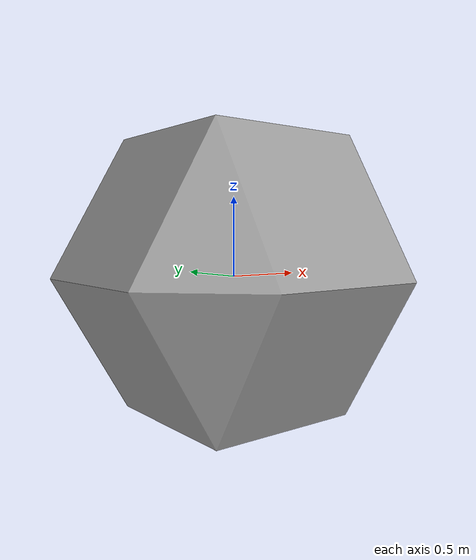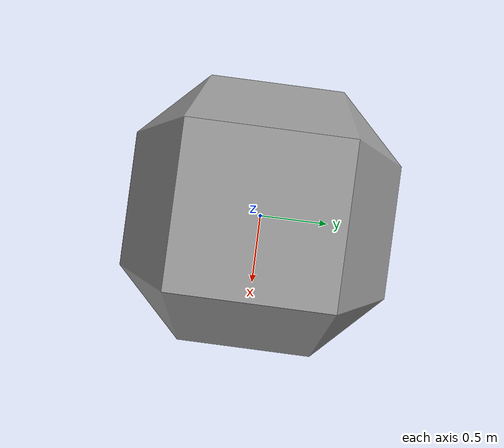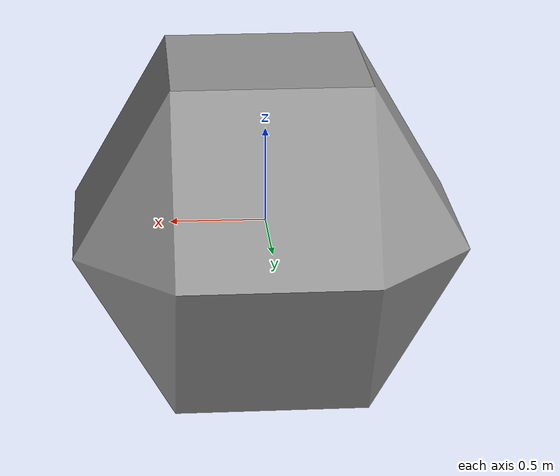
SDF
<?xml version='1.0'?>
<sdf version='1.7'>
  <model name='rolling_robot'>
    <link name='link_0'>
      <inertial>
        <mass>10</mass>
        <inertia>
          <ixx>1.66667</ixx>
          <ixy>0</ixy>
          <ixz>0</ixz>
          <iyy>1.66667</iyy>
          <iyz>0</iyz>
          <izz>1.66667</izz>
        </inertia>
        <pose>0 0 0 0 -0 0</pose>
      </inertial>
      <pose>0 0 0 0 -0 0</pose>
      <gravity>1</gravity>
      <self_collide>0</self_collide>
      <kinematic>0</kinematic>
      <enable_wind>0</enable_wind>
      <visual name='visual'>
        <pose>0 0 0 0 -0 0</pose>
        <geometry>
          <mesh>
            <uri>/home/eric/rolling_robot/rolling_robot_model/robot_shape.stl</uri>
            <scale>1 1 1</scale>
          </mesh>
        </geometry>
        <material>
          <lighting>1</lighting>
          <script>
            <uri>file://media/materials/scripts/gazebo.material</uri>
            <name>Gazebo/Grey</name>
          </script>
          <shader type='pixel'>
            <normal_map>__default__</normal_map>
          </shader>
          <ambient>0.3 0.3 0.3 1</ambient>
          <diffuse>0.7 0.7 0.7 1</diffuse>
          <specular>0.01 0.01 0.01 1</specular>
          <emissive>0 0 0 1</emissive>
        </material>
        <transparency>0</transparency>
        <cast_shadows>1</cast_shadows>
      </visual>
      <collision name='collision'>
        <laser_retro>0</laser_retro>
        <max_contacts>10</max_contacts>
        <pose>0 0 0 0 -0 0</pose>
        <geometry>
          <mesh>
            <uri>/home/eric/rolling_robot/rolling_robot_model/robot_shape.stl</uri>
            <scale>1 1 1</scale>
          </mesh>
        </geometry>
        <surface>
          <friction>
            <ode>
              <mu>1</mu>
              <mu2>1</mu2>
              <fdir1>0 0 0</fdir1>
              <slip1>0</slip1>
              <slip2>0</slip2>
            </ode>
            <torsional>
              <coefficient>1</coefficient>
              <patch_radius>0</patch_radius>
              <surface_radius>0</surface_radius>
              <use_patch_radius>1</use_patch_radius>
              <ode>
                <slip>0</slip>
              </ode>
            </torsional>
          </friction>
          <bounce>
            <restitution_coefficient>0</restitution_coefficient>
            <threshold>1e+06</threshold>
          </bounce>
          <contact>
            <collide_without_contact>0</collide_without_contact>
            <collide_without_contact_bitmask>1</collide_without_contact_bitmask>
            <collide_bitmask>1</collide_bitmask>
            <ode>
              <soft_cfm>0</soft_cfm>
              <soft_erp>0.2</soft_erp>
              <kp>1e+13</kp>
              <kd>1</kd>
              <max_vel>0.01</max_vel>
              <min_depth>0</min_depth>
            </ode>
            <bullet>
              <split_impulse>1</split_impulse>
              <split_impulse_penetration_threshold>-0.01</split_impulse_penetration_threshold>
              <soft_cfm>0</soft_cfm>
              <soft_erp>0.2</soft_erp>
              <kp>1e+13</kp>
              <kd>1</kd>
            </bullet>
          </contact>
        </surface>
      </collision>
    </link>
    <link name='link_0_0'>
      <inertial>
        <mass>0.1</mass>
        <inertia>
          <ixx>0.00083958</ixx>
          <ixy>0</ixy>
          <ixz>0</ixz>
          <iyy>0.00083958</iyy>
          <iyz>0</iyz>
          <izz>1.25e-05</izz>
        </inertia>
        <pose>0 0 0 0 -0 0</pose>
      </inertial>
      <pose>-0.045001 -0.22 -0.384124 -0.523599 -0 -0</pose>
      <gravity>1</gravity>
      <self_collide>0</self_collide>
      <kinematic>0</kinematic>
      <enable_wind>0</enable_wind>
      <visual name='visual'>
        <pose>0 0 0 0 -0 0</pose>
        <geometry>
          <cylinder>
            <radius>0.05</radius>
            <length>1</length>
          </cylinder>
        </geometry>
        <material>
          <lighting>1</lighting>
          <script>
            <uri>file://media/materials/scripts/gazebo.material</uri>
            <name>Gazebo/Grey</name>
          </script>
          <shader type='pixel'>
            <normal_map>__default__</normal_map>
          </shader>
          <ambient>0.3 0.3 0.3 1</ambient>
          <diffuse>0.7 0.7 0.7 1</diffuse>
          <specular>0.01 0.01 0.01 1</specular>
          <emissive>0 0 0 1</emissive>
        </material>
        <transparency>0</transparency>
        <cast_shadows>1</cast_shadows>
      </visual>
      <collision name='collision'>
        <laser_retro>0</laser_retro>
        <max_contacts>10</max_contacts>
        <pose>0 0 0 0 -0 0</pose>
        <geometry>
          <cylinder>
            <radius>0.05</radius>
            <length>1</length>
          </cylinder>
        </geometry>
        <surface>
          <friction>
            <ode>
              <mu>1</mu>
              <mu2>1</mu2>
              <fdir1>0 0 0</fdir1>
              <slip1>0</slip1>
              <slip2>0</slip2>
            </ode>
            <torsional>
              <coefficient>1</coefficient>
              <patch_radius>0</patch_radius>
              <surface_radius>0</surface_radius>
              <use_patch_radius>1</use_patch_radius>
              <ode>
                <slip>0</slip>
              </ode>
            </torsional>
          </friction>
          <bounce>
            <restitution_coefficient>0</restitution_coefficient>
            <threshold>1e+06</threshold>
          </bounce>
          <contact>
            <collide_without_contact>0</collide_without_contact>
            <collide_without_contact_bitmask>1</collide_without_contact_bitmask>
            <collide_bitmask>1</collide_bitmask>
            <ode>
              <soft_cfm>0</soft_cfm>
              <soft_erp>0.2</soft_erp>
              <kp>1e+13</kp>
              <kd>1</kd>
              <max_vel>0.01</max_vel>
              <min_depth>0</min_depth>
            </ode>
            <bullet>
              <split_impulse>1</split_impulse>
              <split_impulse_penetration_threshold>-0.01</split_impulse_penetration_threshold>
              <soft_cfm>0</soft_cfm>
              <soft_erp>0.2</soft_erp>
              <kp>1e+13</kp>
              <kd>1</kd>
            </bullet>
          </contact>
        </surface>
      </collision>
    </link>
    <link name='link_0_0_clone'>
      <inertial>
        <mass>0.1</mass>
        <inertia>
          <ixx>0.00083958</ixx>
          <ixy>0</ixy>
          <ixz>0</ixz>
          <iyy>0.00083958</iyy>
          <iyz>0</iyz>
          <izz>1.25e-05</izz>
        </inertia>
        <pose>0 0 0 0 -0 0</pose>
      </inertial>
      <pose>0.017731 0.22 -0.384124 0.5236 -0 0</pose>
      <gravity>1</gravity>
      <self_collide>0</self_collide>
      <kinematic>0</kinematic>
      <enable_wind>0</enable_wind>
      <visual name='visual'>
        <pose>0 0 0 0 -0 0</pose>
        <geometry>
          <cylinder>
            <radius>0.05</radius>
            <length>1</length>
          </cylinder>
        </geometry>
        <material>
          <lighting>1</lighting>
          <script>
            <uri>file://media/materials/scripts/gazebo.material</uri>
            <name>Gazebo/Grey</name>
          </script>
          <shader type='pixel'>
            <normal_map>__default__</normal_map>
          </shader>
          <ambient>0.3 0.3 0.3 1</ambient>
          <diffuse>0.7 0.7 0.7 1</diffuse>
          <specular>0.01 0.01 0.01 1</specular>
          <emissive>0 0 0 1</emissive>
        </material>
        <transparency>0</transparency>
        <cast_shadows>1</cast_shadows>
      </visual>
      <collision name='collision'>
        <laser_retro>0</laser_retro>
        <max_contacts>10</max_contacts>
        <pose>0 0 0 0 -0 0</pose>
        <geometry>
          <cylinder>
            <radius>0.05</radius>
            <length>1</length>
          </cylinder>
        </geometry>
        <surface>
          <friction>
            <ode>
              <mu>1</mu>
              <mu2>1</mu2>
              <fdir1>0 0 0</fdir1>
              <slip1>0</slip1>
              <slip2>0</slip2>
            </ode>
            <torsional>
              <coefficient>1</coefficient>
              <patch_radius>0</patch_radius>
              <surface_radius>0</surface_radius>
              <use_patch_radius>1</use_patch_radius>
              <ode>
                <slip>0</slip>
              </ode>
            </torsional>
          </friction>
          <bounce>
            <restitution_coefficient>0</restitution_coefficient>
            <threshold>1e+06</threshold>
          </bounce>
          <contact>
            <collide_without_contact>0</collide_without_contact>
            <collide_without_contact_bitmask>1</collide_without_contact_bitmask>
            <collide_bitmask>1</collide_bitmask>
            <ode>
              <soft_cfm>0</soft_cfm>
              <soft_erp>0.2</soft_erp>
              <kp>1e+13</kp>
              <kd>1</kd>
              <max_vel>0.01</max_vel>
              <min_depth>0</min_depth>
            </ode>
            <bullet>
              <split_impulse>1</split_impulse>
              <split_impulse_penetration_threshold>-0.01</split_impulse_penetration_threshold>
              <soft_cfm>0</soft_cfm>
              <soft_erp>0.2</soft_erp>
              <kp>1e+13</kp>
              <kd>1</kd>
            </bullet>
          </contact>
        </surface>
      </collision>
    </link>
    <link name='link_0_0_clone_0'>
      <inertial>
        <mass>0.1</mass>
        <inertia>
          <ixx>0.00083958</ixx>
          <ixy>0</ixy>
          <ixz>0</ixz>
          <iyy>0.00083958</iyy>
          <iyz>0</iyz>
          <izz>1.25e-05</izz>
        </inertia>
        <pose>0 0 0 0 -0 0</pose>
      </inertial>
      <pose>0.013302 0.45 -2e-06 1.5708 -0 0</pose>
      <gravity>1</gravity>
      <self_collide>0</self_collide>
      <kinematic>0</kinematic>
      <enable_wind>0</enable_wind>
      <visual name='visual'>
        <pose>0 0 0 0 -0 0</pose>
        <geometry>
          <cylinder>
            <radius>0.05</radius>
            <length>1</length>
          </cylinder>
        </geometry>
        <material>
          <lighting>1</lighting>
          <script>
            <uri>file://media/materials/scripts/gazebo.material</uri>
            <name>Gazebo/Grey</name>
          </script>
          <shader type='pixel'>
            <normal_map>__default__</normal_map>
          </shader>
          <ambient>0.3 0.3 0.3 1</ambient>
          <diffuse>0.7 0.7 0.7 1</diffuse>
          <specular>0.01 0.01 0.01 1</specular>
          <emissive>0 0 0 1</emissive>
        </material>
        <transparency>0</transparency>
        <cast_shadows>1</cast_shadows>
      </visual>
      <collision name='collision'>
        <laser_retro>0</laser_retro>
        <max_contacts>10</max_contacts>
        <pose>0 0 0 0 -0 0</pose>
        <geometry>
          <cylinder>
            <radius>0.05</radius>
            <length>1</length>
          </cylinder>
        </geometry>
        <surface>
          <friction>
            <ode>
              <mu>1</mu>
              <mu2>1</mu2>
              <fdir1>0 0 0</fdir1>
              <slip1>0</slip1>
              <slip2>0</slip2>
            </ode>
            <torsional>
              <coefficient>1</coefficient>
              <patch_radius>0</patch_radius>
              <surface_radius>0</surface_radius>
              <use_patch_radius>1</use_patch_radius>
              <ode>
                <slip>0</slip>
              </ode>
            </torsional>
          </friction>
          <bounce>
            <restitution_coefficient>0</restitution_coefficient>
            <threshold>1e+06</threshold>
          </bounce>
          <contact>
            <collide_without_contact>0</collide_without_contact>
            <collide_without_contact_bitmask>1</collide_without_contact_bitmask>
            <collide_bitmask>1</collide_bitmask>
            <ode>
              <soft_cfm>0</soft_cfm>
              <soft_erp>0.2</soft_erp>
              <kp>1e+13</kp>
              <kd>1</kd>
              <max_vel>0.01</max_vel>
              <min_depth>0</min_depth>
            </ode>
            <bullet>
              <split_impulse>1</split_impulse>
              <split_impulse_penetration_threshold>-0.01</split_impulse_penetration_threshold>
              <soft_cfm>0</soft_cfm>
              <soft_erp>0.2</soft_erp>
              <kp>1e+13</kp>
              <kd>1</kd>
            </bullet>
          </contact>
        </surface>
      </collision>
    </link>
    <link name='link_0_0_clone_clone'>
      <inertial>
        <mass>0.1</mass>
        <inertia>
          <ixx>0.00083958</ixx>
          <ixy>0</ixy>
          <ixz>0</ixz>
          <iyy>0.00083958</iyy>
          <iyz>0</iyz>
          <izz>1.25e-05</izz>
        </inertia>
        <pose>0 0 0 0 -0 0</pose>
      </inertial>
      <pose>1e-06 0.23 0.38 -0.523601 4e-06 -0.012984</pose>
      <gravity>1</gravity>
      <self_collide>0</self_collide>
      <kinematic>0</kinematic>
      <enable_wind>0</enable_wind>
      <visual name='visual'>
        <pose>0 0 0 0 -0 0</pose>
        <geometry>
          <cylinder>
            <radius>0.05</radius>
            <length>1</length>
          </cylinder>
        </geometry>
        <material>
          <lighting>1</lighting>
          <script>
            <uri>file://media/materials/scripts/gazebo.material</uri>
            <name>Gazebo/Grey</name>
          </script>
          <shader type='pixel'>
            <normal_map>__default__</normal_map>
          </shader>
          <ambient>0.3 0.3 0.3 1</ambient>
          <diffuse>0.7 0.7 0.7 1</diffuse>
          <specular>0.01 0.01 0.01 1</specular>
          <emissive>0 0 0 1</emissive>
        </material>
        <transparency>0</transparency>
        <cast_shadows>1</cast_shadows>
      </visual>
      <collision name='collision'>
        <laser_retro>0</laser_retro>
        <max_contacts>10</max_contacts>
        <pose>0 0 0 0 -0 0</pose>
        <geometry>
          <cylinder>
            <radius>0.05</radius>
            <length>1</length>
          </cylinder>
        </geometry>
        <surface>
          <friction>
            <ode>
              <mu>1</mu>
              <mu2>1</mu2>
              <fdir1>0 0 0</fdir1>
              <slip1>0</slip1>
              <slip2>0</slip2>
            </ode>
            <torsional>
              <coefficient>1</coefficient>
              <patch_radius>0</patch_radius>
              <surface_radius>0</surface_radius>
              <use_patch_radius>1</use_patch_radius>
              <ode>
                <slip>0</slip>
              </ode>
            </torsional>
          </friction>
          <bounce>
            <restitution_coefficient>0</restitution_coefficient>
            <threshold>1e+06</threshold>
          </bounce>
          <contact>
            <collide_without_contact>0</collide_without_contact>
            <collide_without_contact_bitmask>1</collide_without_contact_bitmask>
            <collide_bitmask>1</collide_bitmask>
            <ode>
              <soft_cfm>0</soft_cfm>
              <soft_erp>0.2</soft_erp>
              <kp>1e+13</kp>
              <kd>1</kd>
              <max_vel>0.01</max_vel>
              <min_depth>0</min_depth>
            </ode>
            <bullet>
              <split_impulse>1</split_impulse>
              <split_impulse_penetration_threshold>-0.01</split_impulse_penetration_threshold>
              <soft_cfm>0</soft_cfm>
              <soft_erp>0.2</soft_erp>
              <kp>1e+13</kp>
              <kd>1</kd>
            </bullet>
          </contact>
        </surface>
      </collision>
    </link>
    <joint name='link_0_JOINT_0_0' type='prismatic'>
      <parent>link_0</parent>
      <child>link_0_0_clone_0</child>
      <pose>0 0 0 0 -0 0</pose>
      <axis>
        <xyz>-0 -0 -1</xyz>
        <limit>
          <lower>-1.79769e+308</lower>
          <upper>1.79769e+308</upper>
          <effort>-1</effort>
          <velocity>-1</velocity>
        </limit>
        <dynamics>
          <spring_reference>0</spring_reference>
          <spring_stiffness>0</spring_stiffness>
          <damping>0</damping>
        </dynamics>
      </axis>
      <physics>
        <ode>
          <limit>
            <cfm>0</cfm>
            <erp>0.2</erp>
          </limit>
          <suspension>
            <cfm>0</cfm>
            <erp>0.2</erp>
          </suspension>
        </ode>
      </physics>
    </joint>
    <joint name='link_0_JOINT_0' type='prismatic'>
      <parent>link_0</parent>
      <child>link_0_0_clone</child>
      <pose>0 0 0 0 -0 0</pose>
      <axis>
        <xyz>0 0 -1</xyz>
        <limit>
          <lower>-1.79769e+308</lower>
          <upper>1.79769e+308</upper>
          <effort>-1</effort>
          <velocity>-1</velocity>
        </limit>
        <dynamics>
          <spring_reference>0</spring_reference>
          <spring_stiffness>0</spring_stiffness>
          <damping>0</damping>
          <friction>0</friction>
        </dynamics>
      </axis>
      <physics>
        <ode>
          <limit>
            <cfm>0</cfm>
            <erp>0.2</erp>
          </limit>
          <suspension>
            <cfm>0</cfm>
            <erp>0.2</erp>
          </suspension>
        </ode>
      </physics>
    </joint>
    <joint name='link_0_JOINT_1_0' type='prismatic'>
      <parent>link_0</parent>
      <child>link_0_0_clone_clone</child>
      <pose>0 0 0 0 -0 0</pose>
      <axis>
        <xyz>0 0 1</xyz>
        <limit>
          <lower>-1.79769e+308</lower>
          <upper>1.79769e+308</upper>
          <effort>-1</effort>
          <velocity>-1</velocity>
        </limit>
        <dynamics>
          <spring_reference>0</spring_reference>
          <spring_stiffness>0</spring_stiffness>
          <damping>0</damping>
        </dynamics>
      </axis>
      <physics>
        <ode>
          <limit>
            <cfm>0</cfm>
            <erp>0.2</erp>
          </limit>
          <suspension>
            <cfm>0</cfm>
            <erp>0.2</erp>
          </suspension>
        </ode>
      </physics>
    </joint>
    <joint name='link_0_JOINT_1' type='prismatic'>
      <parent>link_0</parent>
      <child>link_0_0</child>
      <pose>0 0 0 0 -0 0</pose>
      <axis>
        <xyz>-0 -0 -1</xyz>
        <limit>
          <lower>-1.79769e+308</lower>
          <upper>1.79769e+308</upper>
          <effort>-1</effort>
          <velocity>-1</velocity>
        </limit>
        <dynamics>
          <spring_reference>0</spring_reference>
          <spring_stiffness>0</spring_stiffness>
          <damping>0</damping>
          <friction>0</friction>
        </dynamics>
      </axis>
      <physics>
        <ode>
          <limit>
            <cfm>0</cfm>
            <erp>0.2</erp>
          </limit>
          <suspension>
            <cfm>0</cfm>
            <erp>0.2</erp>
          </suspension>
        </ode>
      </physics>
    </joint>
    <static>0</static>
    <allow_auto_disable>1</allow_auto_disable>
  </model>
</sdf>
